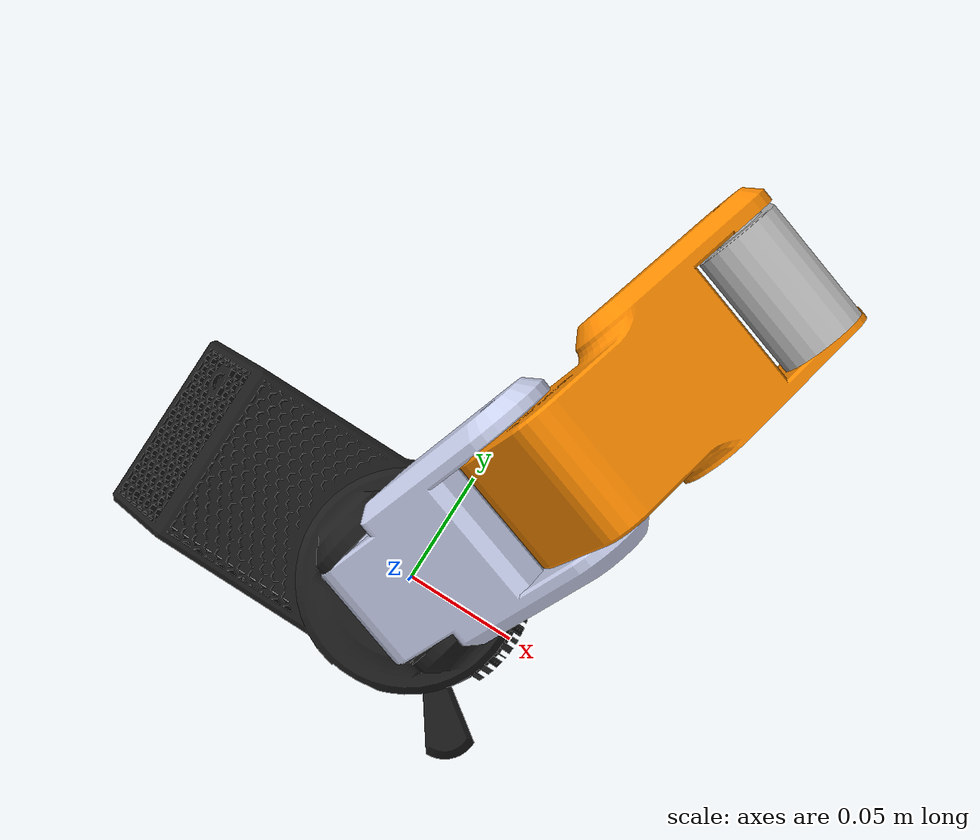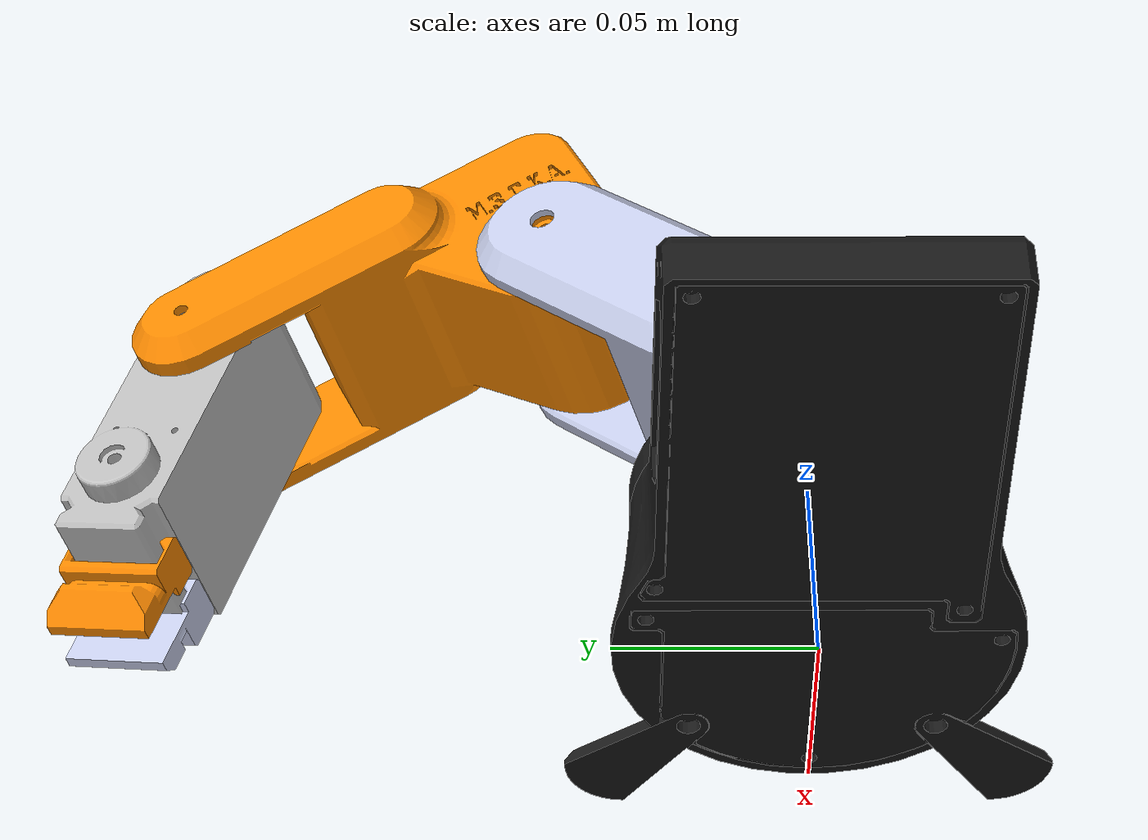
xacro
<?xml version="1.0"?>
<robot xmlns:xacro="http://www.ros.org/wiki/xacro" name="roboflex_description">
    <xacro:arg name="initial_positions_file" default="initial_positions.yaml" />

    <!-- Import roboflex_description urdf file -->
    <xacro:include filename="$(find roboflex_description)/urdf/roboflex_robotic_arm.urdf.xacro" />

    <!-- Import control_xacro -->
    <xacro:include filename="roboflex_description.ros2_control.xacro" />

    <xacro:roboflex_description_ros2_control name="FakeSystem" initial_positions_file="$(arg initial_positions_file)"/>

</robot>

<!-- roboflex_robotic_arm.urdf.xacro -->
<robot
  name="roboflex_description">
   <link name="world"/>
  <joint name="world_fixed" type="fixed">
    <parent link="world"/>
    <child link="base_link"/>
  </joint>
    <link name="random"/>
  <joint name="joint_gripper_right_part_mimic" type="fixed">
    <parent link="world" />
    <child link="random" />
  </joint>
  <link
    name="base_link">
    <inertial>
      <origin
        xyz="-0.0198856207674204 -0.00141287834695654 0.0217127988880841"
        rpy="0 0 0" />
      <mass
        value="0.134010546144028" />
      <inertia
        ixx="0.000135168968359235"
        ixy="-6.91009827779041E-06"
        ixz="-4.27277665593471E-07"
        iyy="0.0002643923164745"
        iyz="2.33805748764974E-06"
        izz="0.000360228822623865" />
    </inertial>
    <visual>
      <origin
        xyz="0 0 0"
        rpy="0 0 0" />
      <geometry>
        <mesh
          filename="package://roboflex_description/meshes/base_link.STL" />
      </geometry>
      <material
        name="">
        <color
          rgba="0.101960784313725 0.101960784313725 0.101960784313725 1" />
      </material>
    </visual>
    <collision>
      <origin
        xyz="0 0 0"
        rpy="0 0 0" />
      <geometry>
        <mesh
          filename="package://roboflex_description/meshes/base_link.STL" />
      </geometry>
    </collision>
  </link>
  <link
    name="link_1">
    <inertial>
      <origin
        xyz="-0.000335711526938457 -0.00195685906883548 0.00400567773618168"
        rpy="0 0 0" />
      <mass
        value="0.0638354178670981" />
      <inertia
        ixx="2.04371827614838E-05"
        ixy="-1.48219694208089E-06"
        ixz="-8.60140187373712E-08"
        iyy="3.74765314270289E-05"
        iyz="6.85161603931178E-08"
        izz="3.90116575763446E-05" />
    </inertial>
    <visual>
      <origin
        xyz="0 0 0"
        rpy="0 0 0" />
      <geometry>
        <mesh
          filename="package://roboflex_description/meshes/link_1.STL" />
      </geometry>
      <material
        name="">
        <color
          rgba="0.109803921568627 0.109803921568627 0.109803921568627 1" />
      </material>
    </visual>
    <collision>
      <origin
        xyz="0 0 0"
        rpy="0 0 0" />
      <geometry>
        <mesh
          filename="package://roboflex_description/meshes/link_1.STL" />
      </geometry>
    </collision>
  </link>
  <joint
    name="joint_1"
    type="revolute">
    <origin
      xyz="0 0 0.0515"
      rpy="0 0 1.27" />
    <parent
      link="base_link" />
    <child
      link="link_1" />
    <axis
      xyz="0 0 1" />
    <limit
      lower="-1.57"
      upper="1.57"
      effort="1000"
      velocity="1000" />
  </joint>
  <link
    name="link_2">
    <inertial>
      <origin
        xyz="-0.0293839678153532 -0.0391750047752968 0.0298252942272988"
        rpy="0 0 0" />
      <mass
        value="0.074807158508353" />
      <inertia
        ixx="4.73563804379614E-05"
        ixy="-5.15954984901729E-06"
        ixz="3.16484874429079E-05"
        iyy="8.81011489770943E-05"
        iyz="4.22015714258333E-06"
        izz="5.27508477785787E-05" />
    </inertial>
    <visual>
      <origin
        xyz="0 0 0"
        rpy="0 0 0" />
      <geometry>
        <mesh
          filename="package://roboflex_description/meshes/link_2.STL" />
      </geometry>
      <material
        name="">
        <color
          rgba="0.792156862745098 0.819607843137255 0.933333333333333 1" />
      </material>
    </visual>
    <collision>
      <origin
        xyz="0 0 0"
        rpy="0 0 0" />
      <geometry>
        <mesh
          filename="package://roboflex_description/meshes/link_2.STL" />
      </geometry>
    </collision>
  </link>
  <joint
    name="joint_2"
    type="revolute">
    <origin
      xyz="-0.0028235 0.032377 0.024"
      rpy="0 1.61 0" />
    <parent
      link="link_1" />
    <child
      link="link_2" />
    <axis
      xyz="0.087156 -0.99619 0" />
    <limit
      lower="-1.57"
      upper="1.57"
      effort="1000"
      velocity="1000" />
  </joint>
  <link
    name="link_3">
    <inertial>
      <origin
        xyz="0.0227758078532524 -0.0328556506617019 0.0329637414290207"
        rpy="0 0 0" />
      <mass
        value="0.075817481422865" />
      <inertia
        ixx="4.12901217145756E-05"
        ixy="-4.85004213224955E-07"
        ixz="-2.63576710382377E-05"
        iyy="0.000109254231873346"
        iyz="4.03948740600622E-08"
        izz="7.74750349154183E-05" />
    </inertial>
    <visual>
      <origin
        xyz="0 0 0"
        rpy="0 0 0" />
      <geometry>
        <mesh
          filename="package://roboflex_description/meshes/link_3.STL" />
      </geometry>
      <material
        name="">
        <color
          rgba="1 0.549019607843137 0 1" />
      </material>
    </visual>
    <collision>
      <origin
        xyz="0 0 0"
        rpy="0 0 0" />
      <geometry>
        <mesh
          filename="package://roboflex_description/meshes/link_3.STL" />
      </geometry>
    </collision>
  </link>
  <joint
    name="joint_3"
    type="revolute">
    <origin
      xyz="-0.065843 -0.0047567 0.06118"
      rpy="0 -0.98 0.087266" />
    <parent
      link="link_2" />
    <child
      link="link_3" />
    <axis
      xyz="0 1 0" />
    <limit
      lower="-1.57"
      upper="1.57"
      effort="1000"
      velocity="1000" />
  </joint>
  <link
    name="gripper_body_link">
    <inertial>
      <origin
        xyz="0.0238071448579615 -0.0316783222787854 0.00277894821163538"
        rpy="0 0 0" />
      <mass
        value="0.0774671928989127" />
      <inertia
        ixx="1.97841107265129E-05"
        ixy="-2.88927123181906E-06"
        ixz="-3.52790061750793E-06"
        iyy="4.11454125472179E-05"
        iyz="-3.23805423941019E-07"
        izz="4.92368498696563E-05" />
    </inertial>
    <visual>
      <origin
        xyz="0 0 0"
        rpy="0 0 0" />
      <geometry>
        <mesh
          filename="package://roboflex_description/meshes/gripper_body_link.STL" />
      </geometry>
      <material
        name="">
        <color
          rgba="0.752941176470588 0.752941176470588 0.752941176470588 1" />
      </material>
    </visual>
    <collision>
      <origin
        xyz="0 0 0"
        rpy="0 0 0" />
      <geometry>
        <mesh
          filename="package://roboflex_description/meshes/gripper_body_link.STL" />
      </geometry>
    </collision>
  </link>
  <joint
    name="joint_gripper_body"
    type="revolute">
    <origin
      xyz="0.085374 0.001 0.055591"
      rpy="0 0.75 0" />
    <parent
      link="link_3" />
    <child
      link="gripper_body_link" />
    <axis
      xyz="0 1 0" />
    <limit
      lower="-1"
      upper="1"
      effort="1000"
      velocity="1000" />
  </joint>
  <link
    name="gripper_left_link">
    <inertial>
      <origin
        xyz="0.0764884076472838 -0.0289481833034687 0.00870239087002106"
        rpy="0 0 0" />
      <mass
        value="0.00458928127195507" />
      <inertia
        ixx="4.2943383442101E-07"
        ixy="5.8453379790829E-09"
        ixz="2.32878269343507E-08"
        iyy="5.92189254891713E-07"
        iyz="6.84283162314224E-10"
        izz="2.3322889368892E-07" />
    </inertial>
    <visual>
      <origin
        xyz="0 0 0"
        rpy="0 0 0" />
      <geometry>
        <mesh
          filename="package://roboflex_description/meshes/gripper_left_link.STL" />
      </geometry>
      <material
        name="">
        <color
          rgba="1 0.545098039215686 0 1" />
      </material>
    </visual>
    <collision>
      <origin
        xyz="0 0 0"
        rpy="0 0 0" />
      <geometry>
        <mesh
          filename="package://roboflex_description/meshes/gripper_left_link.STL" />
      </geometry>
    </collision>
  </link>
  <joint
    name="joint_gripper_left_part"
    type="prismatic">
    <origin
      xyz="0 0 0"
      rpy="0 0 0" />
    <parent
      link="gripper_body_link" />
    <child
      link="gripper_left_link" />
    <axis
      xyz="0 1 0" />
    <limit
      lower="-0.4"
      upper="0"
      effort="1000"
      velocity="1000" />
  </joint>
  <link
    name="gripper_right_link">
    <inertial>
      <origin
        xyz="0.0764887069201697 -0.0464089888469002 0.00870242590433329"
        rpy="0 0 0" />
      <mass
        value="0.00458915923311391" />
      <inertia
        ixx="4.29407135925781E-07"
        ixy="-5.83762822506971E-09"
        ixz="2.3286986618263E-08"
        iyy="5.92150639018827E-07"
        iyz="-6.83380621712635E-10"
        izz="2.33209275037086E-07" />
    </inertial>
    <visual>
      <origin
        xyz="0 0 0"
        rpy="0 0 0" />
      <geometry>
        <mesh
          filename="package://roboflex_description/meshes/gripper_right_link.STL" />
      </geometry>
      <material
        name="">
        <color
          rgba="0.796078431372549 0.823529411764706 0.937254901960784 1" />
      </material>
    </visual>
    <collision>
      <origin
        xyz="0 0 0"
        rpy="0 0 0" />
      <geometry>
        <mesh
          filename="package://roboflex_description/meshes/gripper_right_link.STL" />
      </geometry>
    </collision>
  </link>
  <joint
    name="joint_gripper_right_part"
    type="prismatic">
    <origin
      xyz="0 0 0"
      rpy="0 0 0" />
    <parent
      link="gripper_body_link" />
    <child
      link="gripper_right_link" />
    <axis
      xyz="0 1 0" />
    <limit
      lower="0"
      upper="0.4"
      effort="1000"
      velocity="1000" />
  </joint>

  <ros2_control name="IgnitionSystem" type="system">
        <hardware>
          <plugin>ign_ros2_control/IgnitionSystem</plugin>
        </hardware>

        <joint name="joint_1">
            <command_interface name="position">
                <param name="min">-1.57</param>
                <param name="max">1.57</param>
            </command_interface>
            <state_interface name="position">
                <param name="initial_value">0.0</param>
            </state_interface>

        </joint>

        <joint name="joint_2">
            <command_interface name="position">
                <param name="min">-2.879793</param>
                <param name="max">2.879793</param>
            </command_interface>
            <state_interface name="position">
                <param name="initial_value">0.0</param>
            </state_interface>
        </joint>

        <joint name="joint_3">
            <command_interface name="position">
                <param name="min">-2.879793</param>
                <param name="max">2.879793</param>
            </command_interface>
            <state_interface name="position">
                <param name="initial_value">0.0</param>
            </state_interface>
        </joint>

        <joint name="joint_gripper_body">
            <command_interface name="position">
                <param name="min">-1.57</param>
                <param name="max">1.57</param>
            </command_interface>
            <state_interface name="position">
                <param name="initial_value">0.0</param>
            </state_interface>
        </joint>

        <joint name="joint_gripper_left_part">
            <command_interface name="position">
                <param name="min">0</param>
                <param name="max">1.57</param>
            </command_interface>
            <state_interface name="position">
                <param name="initial_value">0.0</param>
            </state_interface>
            <state_interface name="velocity"/>
        </joint>

        <joint name="joint_gripper_right_part">
            <param name="mimic">joint_gripper_left_part</param>
            <param name="multiplier">1</param>
            <command_interface name="position">
                <param name="min">0</param>
                <param name="max">1.57</param>
            </command_interface>
            <state_interface name="position">
                <param name="initial_value">0.0</param>
            </state_interface>
            <state_interface name="velocity"/>
        </joint>

    </ros2_control>

  <gazebo>
    <!-- Joint state publisher -->
    <plugin filename="ign_ros2_control-system" name="ign_ros2_control::IgnitionROS2ControlPlugin">
      <parameters>$(find roboflex_description)/config/roboflex_controllers.yaml</parameters>
    </plugin>
  </gazebo>

</robot>
